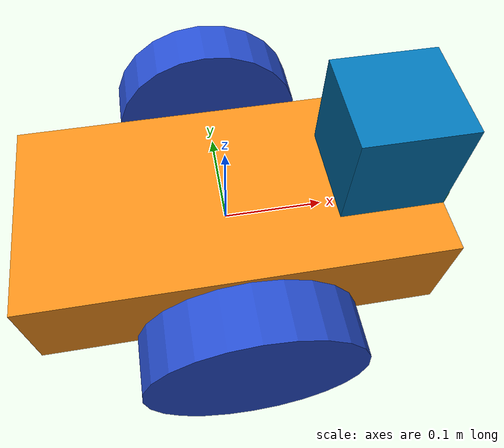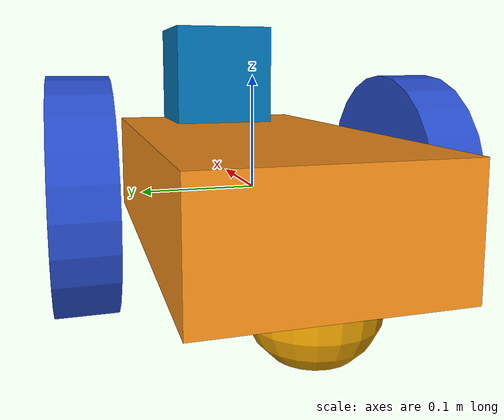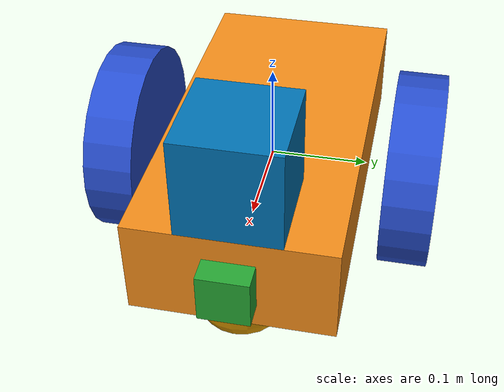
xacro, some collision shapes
<?xml version='1.0'?>

<robot name="myrobot" xmlns:xacro="http://www.ros.org/wiki/xacro">

  <xacro:property name="cameraSize" value="0.05"/>
  <xacro:property name="cameraMass" value="0.1"/>

  <xacro:include filename="$(find mybot_description)/urdf/materials.xacro" />
  <xacro:include filename="$(find mybot_description)/urdf/mybot_gazebo.xacro" />
  <xacro:include filename="$(find mybot_description)/urdf/macros.xacro" />

  <link name='chassis'>

    <inertial>
      <mass value="15.0"/>
      <origin xyz="0.0 0 0.1" rpy=" 0 0 0"/>
      <inertia
          ixx="0.1" ixy="0" ixz="0"
          iyy="0.1" iyz="0"
          izz="0.1"
      />
    </inertial>

    <collision name='collision'>
      <geometry>
        <box size=".4 .2 .1"/>
      </geometry>
    </collision>

    <visual name='chassis_visual'>
      <origin xyz="0 0 0" rpy=" 0 0 0"/>
      <geometry>
        <box size=".4 .2 .1"/>
      </geometry>
      <material name="orange"/>
    </visual>

    <collision name='caster_collision'>
      <origin xyz="-0.15 0 -0.05" rpy=" 0 0 0"/>
      <geometry>
        <sphere radius="0.05"/>
      </geometry>
    </collision>

    <visual name='caster_visual'>
      <origin xyz="-0.15 0 -0.05" rpy=" 0 0 0"/>
      <geometry>
        <sphere radius="0.05"/>
      </geometry>
    </visual>

    <collision name='caster_front_collision'>
      <origin xyz="0.15 0 -0.05" rpy=" 0 0 0"/>
      <geometry>
        <sphere radius="0.05"/>
      </geometry>
    </collision>

    <visual name='caster_front_visual'>
      <origin xyz="0.15 0 -0.05" rpy=" 0 0 0"/>
      <geometry>
        <sphere radius="0.05"/>
      </geometry>
    </visual>

  </link>

  <link name="left_wheel">
    <!--origin xyz="0.1 0.13 0.1" rpy="0 1.5707 1.5707"/-->
    <collision name="collision">
      <origin xyz="0 0 0" rpy="0 1.5707 1.5707"/>
      <geometry>
        <cylinder radius="0.1" length="0.05"/>
      </geometry>
    </collision>
    <visual name="left_wheel_visual">
      <origin xyz="0 0 0" rpy="0 1.5707 1.5707"/>
      <geometry>
        <cylinder radius="0.1" length="0.05"/>
      </geometry>
      <material name="blue"/>
    </visual>
    <inertial>
      <origin xyz="0 0 0" rpy="0 1.5707 1.5707"/>
      <mass value="5"/>
      <inertia
        ixx=".1" ixy="0.0" ixz="0.0"
        iyy=".1" iyz="0.0"
        izz=".1"/>
    </inertial>
  </link>

  <link name="right_wheel">
    <!--origin xyz="0.1 -0.13 0.1" rpy="0 1.5707 1.5707"/-->
    <collision name="collision">
      <origin xyz="0 0 0" rpy="0 1.5707 1.5707"/>
      <geometry>
        <cylinder radius="0.1" length="0.05"/>
      </geometry>
    </collision>
    <visual name="right_wheel_visual">
      <origin xyz="0 0 0" rpy="0 1.5707 1.5707"/>
      <geometry>
        <cylinder radius="0.1" length="0.05"/>
      </geometry>
      <material name="blue"/>
    </visual>
    <inertial>
      <origin xyz="0 0 0" rpy="0 1.5707 1.5707"/>
      <mass value="5"/>
      <inertia
        ixx=".1" ixy="0.0" ixz="0.0"
        iyy=".1" iyz="0.0"
        izz=".1"/>
    </inertial>
  </link>

  <joint type="continuous" name="left_wheel_hinge">
    <origin xyz="0 0.15 0" rpy="0 0 0"/>
    <!--origin xyz="0.1 0.13 0" rpy="0 1.5707 1.5707"/-->
    <child link="left_wheel"/>
    <parent link="chassis"/>
    <axis xyz="0 1 0" rpy="0 0 0"/>
    <limit effort="10000" velocity="1000"/>
    <joint_properties damping="1.0" friction="1.0"/>
  </joint>

  <joint type="continuous" name="right_wheel_hinge">
    <origin xyz="0 -0.15 0" rpy="0 0 0"/>
    <!--origin xyz="0.1 -0.13 0" rpy="0 1.5707 1.5707"/-->
    <child link="right_wheel"/>
    <parent link="chassis"/>
    <axis xyz="0 1 0" rpy="0 0 0"/>
    <limit effort="10000" velocity="1000"/>
    <joint_properties damping="1.0" friction="1.0"/>
  </joint>

  <link name="camera">
    <collision>
      <origin xyz="0 0 0" rpy="0 0 0"/>
      <geometry>
        <box size="${cameraSize} ${cameraSize} ${cameraSize}"/>
      </geometry>
    </collision>

    <visual>
      <origin xyz="0 0 0" rpy="0 0 0"/>
      <geometry>
        <box size="${cameraSize} ${cameraSize} ${cameraSize}"/>
      </geometry>
      <material name="green"/>
    </visual>

    <inertial>
      <mass value="${cameraMass}" />
      <origin xyz="0 0 0" rpy="0 0 0"/>
      <inertia ixx="1e-6" ixy="0" ixz="0" iyy="1e-6" iyz="0" izz="1e-6" />
    </inertial>
  </link>

  <joint name="camera_joint" type="fixed">
    <axis xyz="0 1 0" />
    <origin xyz=".2 0 0" rpy="0 0 0"/>
    <parent link="chassis"/>
    <child link="camera"/>
  </joint>

  <joint name="hokuyo_joint" type="fixed">
    <axis xyz="0 1 0" />
    <origin xyz=".15 0 .1" rpy="0 0 0"/>
    <parent link="chassis"/>
    <child link="hokuyo"/>
  </joint>

  <!-- Hokuyo Laser -->
  <link name="hokuyo">
    <collision>
      <origin xyz="0 0 0" rpy="0 0 0"/>
      <geometry>
    <box size="0.1 0.1 0.1"/>
      </geometry>
    </collision>

    <visual>
      <origin xyz="0 0 0" rpy="0 0 0"/>
      <geometry>
        <mesh filename="package://mybot_description/meshes/hokuyo.dae"/>
      </geometry>
    </visual>

    <inertial>
      <mass value="1e-5" />
      <origin xyz="0 0 0" rpy="0 0 0"/>
      <inertia ixx="1e-6" ixy="0" ixz="0" iyy="1e-6" iyz="0" izz="1e-6" />
    </inertial>
  </link>

  <joint name="imu_joint" type="fixed">
      <parent link="chassis"/>
      <child link="imu_link"/>
      <origin xyz="0 0 0" rpy="0 0 0"/>
      <axis xyz="0 1 0"/>
  </joint>

  <link name="imu_link">
      <collision>
          <origin xyz="0 0 0" rpy="0 0 0"/>
          <geometry>
            <box size="0.01 0.01 0.01"/>
          </geometry>
      </collision>

      <visual>
          <origin xyz="0 0 0" rpy="0 0 0"/>
          <geometry>
            <box size="0.01 0.01 0.01"/>
         </geometry>
         <material name="orange"/>
      </visual>

      <inertial>
        <origin xyz="0 0 0" rpy="0 0 0"/>
        <mass value="0.01"/>
        <inertia
	        ixx="0.00016667" ixy="0.0" ixz="0.0"
	        iyy="0.00016667" iyz="0.0"
	        izz="0.00016667"/>
        </inertial>
  </link>

</robot>
